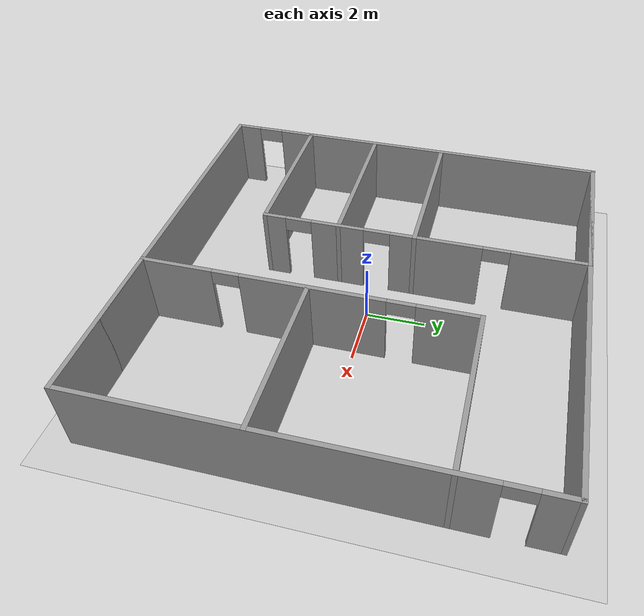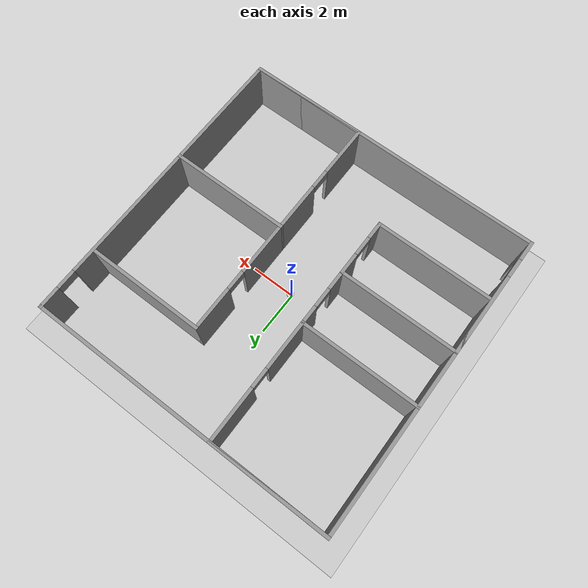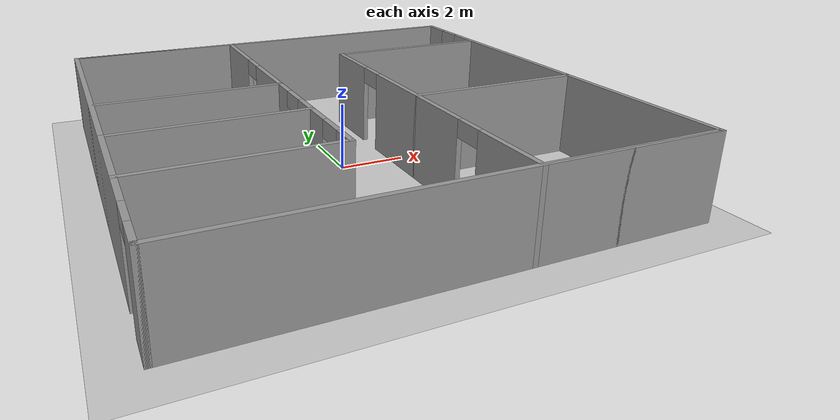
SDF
<sdf version="1.7">
 <world name="default">
  <light name="sun" type="directional">
   <pose>0 0 10 0 -0 0</pose>
   <diffuse>0.8 0.8 0.8 1</diffuse>
   <specular>0.2 0.2 0.2 1</specular>
   <attenuation>
    <range>1000</range>
    <constant>0.9</constant>
    <linear>0.01</linear>
    <quadratic>0.001</quadratic>
   </attenuation>
   <direction>-0.5 0.1 -0.9</direction>
   <spot><inner_angle>0</inner_angle><outer_angle>0</outer_angle><falloff>0</falloff></spot>
  </light>
  <model name="ground_plane">
   <static>1</static>
   <link name="link">
    <collision name="collision">
     <geometry><plane><normal>0 0 1</normal><size>100 100</size></plane></geometry>
     <surface><friction><ode><mu>100</mu><mu2>50</mu2></ode></friction></surface>
    </collision>
    <visual name="visual">
     <cast_shadows>0</cast_shadows>
     <geometry><plane><normal>0 0 1</normal><size>100 100</size></plane></geometry>
     <material>
      <script><uri>file://media/materials/scripts/gazebo.material</uri><name>Gazebo/Grey</name></script>
     </material>
    </visual>
   </link>
  </model>
  <gravity>0 0 -9.8</gravity>
  <magnetic_field>6e-06 2.3e-05 -4.2e-05</magnetic_field>
  <atmosphere type="adiabatic"/>
  <physics type="ode">
   <max_step_size>0.001</max_step_size>
   <real_time_factor>1</real_time_factor>
   <real_time_update_rate>1000</real_time_update_rate>
  </physics>
  <scene><ambient>0.4 0.4 0.4 1</ambient><background>0.7 0.7 0.7 1</background><shadows>1</shadows></scene>
  <audio><device>default</device></audio>
  <spherical_coordinates>
   <surface_model>EARTH_WGS84</surface_model>
   <latitude_deg>0</latitude_deg>
   <longitude_deg>0</longitude_deg>
   <elevation>0</elevation>
   <heading_deg>0</heading_deg>
  </spherical_coordinates>
  <model name="agent_bot">
   <link name="base_link">
    <inertial>
     <pose>0.044286 0 0.041429 0 -0 0</pose>
     <mass>0.7</mass>
     <inertia>
      <ixx>0.00361257</ixx>
      <ixy>0</ixy>
      <ixz>0.000624286</ixz>
      <iyy>0.00488671</iyy>
      <iyz>0</iyz>
      <izz>0.00707314</izz>
     </inertia>
    </inertial>
    <collision name="base_link_fixed_joint_lump__chassis_collision">
     <pose>0.115 0 0.075 0 -0 0</pose>
     <geometry><cylinder><length>0.08</length><radius>0.15</radius></cylinder></geometry>
    </collision>
    <collision name="base_link_fixed_joint_lump__caster_wheel_collision_1">
     <pose>0.145 0 0 0 -0 0</pose>
     <geometry><sphere><radius>0.035</radius></sphere></geometry>
     <surface><friction><ode><mu>0.001</mu><mu2>0.001</mu2></ode></friction></surface>
    </collision>
    <collision name="base_link_fixed_joint_lump__laser_frame_collision_2">
     <pose>0 0 0.09 0 -0 0</pose>
     <geometry><cylinder><length>0.04</length><radius>0.05</radius></cylinder></geometry>
    </collision>
    <visual name="base_link_fixed_joint_lump__chassis_visual">
     <pose>0.0725 0 0.04 0 -0 0</pose>
     <geometry><cylinder><length>0.08</length><radius>0.15</radius></cylinder></geometry>
     <material>
      <script><name>Gazebo/White</name><uri>file://media/materials/scripts/gazebo.material</uri></script>
     </material>
    </visual>
    <visual name="base_link_fixed_joint_lump__caster_wheel_visual_1">
     <pose>0.145 0 0 0 -0 0</pose>
     <geometry><sphere><radius>0.035</radius></sphere></geometry>
     <material>
      <script><name>Gazebo/Yellow</name><uri>file://media/materials/scripts/gazebo.material</uri></script>
     </material>
    </visual>
    <visual name="base_link_fixed_joint_lump__laser_frame_visual_2">
     <pose>0 0 0.09 0 -0 0</pose>
     <geometry><cylinder><length>0.02</length><radius>0.04</radius></cylinder></geometry>
     <material>
      <script><name>Gazebo/Red</name><uri>file://media/materials/scripts/gazebo.material</uri></script>
     </material>
    </visual>
    <sensor name="laser" type="ray">
     <visualize>1</visualize>
     <update_rate>10</update_rate>
     <ray>
      <scan>
       <horizontal>
        <samples>360</samples>
        <min_angle>-3.14</min_angle>
        <max_angle>3.14</max_angle>
        <resolution>1</resolution>
       </horizontal>
       <vertical><samples>1</samples><min_angle>0</min_angle><max_angle>0</max_angle></vertical>
      </scan>
      <range><min>0.3</min><max>50</max></range>
     </ray>
     <plugin name="laser_controller" filename="libgazebo_ros_ray_sensor.so">
      <ros><argument>~/out:=scan</argument></ros>
      <output_type>sensor_msgs/LaserScan</output_type>
      <frame_name>laser_frame</frame_name>
     </plugin>
     <pose>0 0 0.09 0 -0 0</pose>
    </sensor>
   </link>
   <joint name="left_wheel_joint" type="revolute">
    <pose relative_to="base_link">0 0.09 0 -1.57075 0 0</pose>
    <parent>base_link</parent>
    <child>left_wheel</child>
    <axis>
     <xyz>0 0 1</xyz>
     <limit><lower>-1e+16</lower><upper>1e+16</upper></limit>
     <dynamics><spring_reference>0</spring_reference><spring_stiffness>0</spring_stiffness></dynamics>
    </axis>
   </joint>
   <link name="left_wheel">
    <pose relative_to="left_wheel_joint">0 0 0 0 -0 0</pose>
    <inertial>
     <mass>0.1</mass>
     <inertia>
      <ixx>3.58333e-05</ixx>
      <ixy>0</ixy>
      <ixz>0</ixz>
      <iyy>3.58333e-05</iyy>
      <iyz>0</iyz>
      <izz>6.125e-05</izz>
     </inertia>
    </inertial>
    <collision name="left_wheel_collision">
     <geometry><sphere><radius>0.035</radius></sphere></geometry>
    </collision>
    <visual name="left_wheel_visual">
     <geometry><cylinder><length>0.025</length><radius>0.035</radius></cylinder></geometry>
     <material>
      <script><name>Gazebo/Yellow</name><uri>file://media/materials/scripts/gazebo.material</uri></script>
     </material>
    </visual>
   </link>
   <joint name="right_wheel_joint" type="revolute">
    <pose relative_to="base_link">0 -0.09 0 1.57075 -0 0</pose>
    <parent>base_link</parent>
    <child>right_wheel</child>
    <axis>
     <xyz>0 0 -1</xyz>
     <limit><lower>-1e+16</lower><upper>1e+16</upper></limit>
     <dynamics><spring_reference>0</spring_reference><spring_stiffness>0</spring_stiffness></dynamics>
    </axis>
   </joint>
   <link name="right_wheel">
    <pose relative_to="right_wheel_joint">0 0 0 0 -0 0</pose>
    <inertial>
     <mass>0.1</mass>
     <inertia>
      <ixx>3.58333e-05</ixx>
      <ixy>0</ixy>
      <ixz>0</ixz>
      <iyy>3.58333e-05</iyy>
      <iyz>0</iyz>
      <izz>6.125e-05</izz>
     </inertia>
    </inertial>
    <collision name="right_wheel_collision">
     <geometry><sphere><radius>0.035</radius></sphere></geometry>
    </collision>
    <visual name="right_wheel_visual">
     <geometry><cylinder><length>0.025</length><radius>0.035</radius></cylinder></geometry>
     <material>
      <script><name>Gazebo/Yellow</name><uri>file://media/materials/scripts/gazebo.material</uri></script>
     </material>
    </visual>
   </link>
   <static>0</static>
   <plugin name="gazebo_ros2_control" filename="libgazebo_ros2_control.so">
    <parameters>/home/ubuntu-ros/ros_ws/install/agent_bot/share/agent_bot/config/my_controllers.yaml</parameters>
    <parameters>/home/ubuntu-ros/ros_ws/install/agent_bot/share/agent_bot/config/gaz_ros2_ctl_sim.yaml</parameters>
   </plugin>
   <pose>0.003769 0.000155 0.034998 -2.2e-05 -1.5e-05 -0.001205</pose>
  </model>
  <model name="mapD">
   <pose>0.094946 -0.022371 0 0 -0 0</pose>
   <link name="Wall_0">
    <collision name="Wall_0_Collision">
     <geometry><box><size>14 0.15 2.5</size></box></geometry>
     <pose>0 0 1.25 0 -0 0</pose>
    </collision>
    <visual name="Wall_0_Visual">
     <pose>0 0 1.25 0 -0 0</pose>
     <geometry><box><size>14 0.15 2.5</size></box></geometry>
     <material>
      <script><uri>file://media/materials/scripts/gazebo.material</uri><name>Gazebo/Grey</name></script>
      <ambient>1 1 1 1</ambient>
     </material>
     <meta><layer>0</layer></meta>
    </visual>
    <pose>0 -6.925 0 0 -0 0</pose>
   </link>
   <link name="Wall_1">
    <pose>6.925 0 0 0 -0 1.5708</pose>
    <visual name="Wall_1_Visual_0">
     <pose>-0.972453 0 1.25 0 -0 0</pose>
     <geometry><box><size>12.0551 0.15 2.5</size></box></geometry>
     <material>
      <script><uri>file://media/materials/scripts/gazebo.material</uri><name>Gazebo/Grey</name></script>
      <ambient>1 1 1 1</ambient>
     </material>
     <meta><layer>0</layer></meta>
    </visual>
    <collision name="Wall_1_Collision_0">
     <geometry><box><size>12.0551 0.15 2.5</size></box></geometry>
     <pose>-0.972453 0 1.25 0 -0 0</pose>
    </collision>
    <visual name="Wall_1_Visual_1">
     <pose>6.47755 0 1.25 0 -0 0</pose>
     <geometry><box><size>1.04491 0.15 2.5</size></box></geometry>
     <material>
      <script><uri>file://media/materials/scripts/gazebo.material</uri><name>Gazebo/Grey</name></script>
      <ambient>1 1 1 1</ambient>
     </material>
     <meta><layer>0</layer></meta>
    </visual>
    <collision name="Wall_1_Collision_1">
     <geometry><box><size>1.04491 0.15 2.5</size></box></geometry>
     <pose>6.47755 0 1.25 0 -0 0</pose>
    </collision>
    <visual name="Wall_1_Visual_2">
     <pose>5.50509 0 2.25 0 -0 0</pose>
     <geometry><box><size>0.9 0.15 0.5</size></box></geometry>
     <material>
      <script><uri>file://media/materials/scripts/gazebo.material</uri><name>Gazebo/Grey</name></script>
      <ambient>1 1 1 1</ambient>
     </material>
     <meta><layer>0</layer></meta>
    </visual>
    <collision name="Wall_1_Collision_2">
     <geometry><box><size>0.9 0.15 0.5</size></box></geometry>
     <pose>5.50509 0 2.25 0 -0 0</pose>
    </collision>
   </link>
   <link name="Wall_10">
    <collision name="Wall_10_Collision">
     <geometry><box><size>5.5 0.15 2.5</size></box></geometry>
     <pose>0 0 1.25 0 -0 0</pose>
    </collision>
    <visual name="Wall_10_Visual">
     <pose>0 0 1.25 0 -0 0</pose>
     <geometry><box><size>5.5 0.15 2.5</size></box></geometry>
     <material>
      <script><uri>file://media/materials/scripts/gazebo.material</uri><name>Gazebo/Grey</name></script>
      <ambient>1 1 1 1</ambient>
     </material>
     <meta><layer>0</layer></meta>
    </visual>
    <pose>4.25 -1.425 0 0 -0 3.14159</pose>
   </link>
   <link name="Wall_12">
    <collision name="Wall_12_Collision">
     <geometry><box><size>5.5 0.15 2.5</size></box></geometry>
     <pose>0 0 1.25 0 -0 0</pose>
    </collision>
    <visual name="Wall_12_Visual">
     <pose>0 0 1.25 0 -0 0</pose>
     <geometry><box><size>5.5 0.15 2.5</size></box></geometry>
     <material>
      <script><uri>file://media/materials/scripts/gazebo.material</uri><name>Gazebo/Grey</name></script>
      <ambient>1 1 1 1</ambient>
     </material>
     <meta><layer>0</layer></meta>
    </visual>
    <pose>-4.25 6.925 0 0 -0 0</pose>
   </link>
   <link name="Wall_13">
    <pose>-1.575 1.5 0 0 -0 -1.5708</pose>
    <visual name="Wall_13_Visual_0">
     <pose>-4.21432 0 1.25 0 -0 0</pose>
     <geometry><box><size>2.57137 0.15 2.5</size></box></geometry>
     <material>
      <script><uri>file://media/materials/scripts/gazebo.material</uri><name>Gazebo/Grey</name></script>
      <ambient>1 1 1 1</ambient>
     </material>
     <meta><layer>0</layer></meta>
    </visual>
    <collision name="Wall_13_Collision_0">
     <geometry><box><size>2.57137 0.15 2.5</size></box></geometry>
     <pose>-4.21432 0 1.25 0 -0 0</pose>
    </collision>
    <visual name="Wall_13_Visual_1">
     <pose>-0.489399 0 1.25 0 -0 0</pose>
     <geometry><box><size>3.07847 0.15 2.5</size></box></geometry>
     <material>
      <script><uri>file://media/materials/scripts/gazebo.material</uri><name>Gazebo/Grey</name></script>
      <ambient>1 1 1 1</ambient>
     </material>
     <meta><layer>0</layer></meta>
    </visual>
    <collision name="Wall_13_Collision_1">
     <geometry><box><size>3.07847 0.15 2.5</size></box></geometry>
     <pose>-0.489399 0 1.25 0 -0 0</pose>
    </collision>
    <visual name="Wall_13_Visual_2">
     <pose>2.86454 0 1.25 0 -0 0</pose>
     <geometry><box><size>1.82941 0.15 2.5</size></box></geometry>
     <material>
      <script><uri>file://media/materials/scripts/gazebo.material</uri><name>Gazebo/Grey</name></script>
      <ambient>1 1 1 1</ambient>
     </material>
     <meta><layer>0</layer></meta>
    </visual>
    <collision name="Wall_13_Collision_2">
     <geometry><box><size>1.82941 0.15 2.5</size></box></geometry>
     <pose>2.86454 0 1.25 0 -0 0</pose>
    </collision>
    <visual name="Wall_13_Visual_3">
     <pose>5.08962 0 1.25 0 -0 0</pose>
     <geometry><box><size>0.820755 0.15 2.5</size></box></geometry>
     <material>
      <script><uri>file://media/materials/scripts/gazebo.material</uri><name>Gazebo/Grey</name></script>
      <ambient>1 1 1 1</ambient>
     </material>
     <meta><layer>0</layer></meta>
    </visual>
    <collision name="Wall_13_Collision_3">
     <geometry><box><size>0.820755 0.15 2.5</size></box></geometry>
     <pose>5.08962 0 1.25 0 -0 0</pose>
    </collision>
    <visual name="Wall_13_Visual_4">
     <pose>-2.47863 0 2.25 0 -0 0</pose>
     <geometry><box><size>0.9 0.15 0.5</size></box></geometry>
     <material>
      <script><uri>file://media/materials/scripts/gazebo.material</uri><name>Gazebo/Grey</name></script>
      <ambient>1 1 1 1</ambient>
     </material>
     <meta><layer>0</layer></meta>
    </visual>
    <collision name="Wall_13_Collision_4">
     <geometry><box><size>0.9 0.15 0.5</size></box></geometry>
     <pose>-2.47863 0 2.25 0 -0 0</pose>
    </collision>
    <visual name="Wall_13_Visual_5">
     <pose>1.49983 0 2.25 0 -0 0</pose>
     <geometry><box><size>0.9 0.15 0.5</size></box></geometry>
     <material>
      <script><uri>file://media/materials/scripts/gazebo.material</uri><name>Gazebo/Grey</name></script>
      <ambient>1 1 1 1</ambient>
     </material>
     <meta><layer>0</layer></meta>
    </visual>
    <collision name="Wall_13_Collision_5">
     <geometry><box><size>0.9 0.15 0.5</size></box></geometry>
     <pose>1.49983 0 2.25 0 -0 0</pose>
    </collision>
    <visual name="Wall_13_Visual_6">
     <pose>4.22924 0 2.25 0 -0 0</pose>
     <geometry><box><size>0.9 0.15 0.5</size></box></geometry>
     <material>
      <script><uri>file://media/materials/scripts/gazebo.material</uri><name>Gazebo/Grey</name></script>
      <ambient>1 1 1 1</ambient>
     </material>
     <meta><layer>0</layer></meta>
    </visual>
    <collision name="Wall_13_Collision_6">
     <geometry><box><size>0.9 0.15 0.5</size></box></geometry>
     <pose>4.22924 0 2.25 0 -0 0</pose>
    </collision>
   </link>
   <link name="Wall_14">
    <collision name="Wall_14_Collision">
     <geometry><box><size>5.5 0.15 2.5</size></box></geometry>
     <pose>0 0 1.25 0 -0 0</pose>
    </collision>
    <visual name="Wall_14_Visual">
     <pose>0 0 1.25 0 -0 0</pose>
     <geometry><box><size>5.5 0.15 2.5</size></box></geometry>
     <material>
      <script><uri>file://media/materials/scripts/gazebo.material</uri><name>Gazebo/Grey</name></script>
      <ambient>1 1 1 1</ambient>
     </material>
     <meta><layer>0</layer></meta>
    </visual>
    <pose>-4.25 -3.925 0 0 -0 3.14159</pose>
   </link>
   <link name="Wall_15">
    <collision name="Wall_15_Collision">
     <geometry><box><size>2.75 0.15 2.5</size></box></geometry>
     <pose>0 0 1.25 0 -0 0</pose>
    </collision>
    <visual name="Wall_15_Visual">
     <pose>0 0 1.25 0 -0 0</pose>
     <geometry><box><size>2.75 0.15 2.5</size></box></geometry>
     <material>
      <script><uri>file://media/materials/scripts/gazebo.material</uri><name>Gazebo/Grey</name></script>
      <ambient>1 1 1 1</ambient>
     </material>
     <meta><layer>0</layer></meta>
    </visual>
    <pose>-6.925 -2.625 0 0 -0 1.5708</pose>
   </link>
   <link name="Wall_16">
    <collision name="Wall_16_Collision">
     <geometry><box><size>5.5 0.15 2.5</size></box></geometry>
     <pose>0 0 1.25 0 -0 0</pose>
    </collision>
    <visual name="Wall_16_Visual">
     <pose>0 0 1.25 0 -0 0</pose>
     <geometry><box><size>5.5 0.15 2.5</size></box></geometry>
     <material>
      <script><uri>file://media/materials/scripts/gazebo.material</uri><name>Gazebo/Grey</name></script>
      <ambient>1 1 1 1</ambient>
     </material>
     <meta><layer>0</layer></meta>
    </visual>
    <pose>-4.25 -1.325 0 0 -0 0</pose>
   </link>
   <link name="Wall_18">
    <collision name="Wall_18_Collision">
     <geometry><box><size>5.5 0.15 2.5</size></box></geometry>
     <pose>0 0 1.25 0 -0 0</pose>
    </collision>
    <visual name="Wall_18_Visual">
     <pose>0 0 1.25 0 -0 0</pose>
     <geometry><box><size>5.5 0.15 2.5</size></box></geometry>
     <material>
      <script><uri>file://media/materials/scripts/gazebo.material</uri><name>Gazebo/Grey</name></script>
      <ambient>1 1 1 1</ambient>
     </material>
     <meta><layer>0</layer></meta>
    </visual>
    <pose>-4.25 1.275 0 0 -0 3.14159</pose>
   </link>
   <link name="Wall_2">
    <collision name="Wall_2_Collision">
     <geometry><box><size>14 0.15 2.5</size></box></geometry>
     <pose>0 0 1.25 0 -0 0</pose>
    </collision>
    <visual name="Wall_2_Visual">
     <pose>0 0 1.25 0 -0 0</pose>
     <geometry><box><size>14 0.15 2.5</size></box></geometry>
     <material>
      <script><uri>file://media/materials/scripts/gazebo.material</uri><name>Gazebo/Grey</name></script>
      <ambient>1 1 1 1</ambient>
     </material>
     <meta><layer>0</layer></meta>
    </visual>
    <pose>0 6.925 0 0 -0 3.14159</pose>
   </link>
   <link name="Wall_3">
    <pose>-6.925 0 0 0 -0 -1.5708</pose>
    <visual name="Wall_3_Visual_0">
     <pose>-0.92542 0 1.25 0 -0 0</pose>
     <geometry><box><size>12.1492 0.15 2.5</size></box></geometry>
     <material>
      <script><uri>file://media/materials/scripts/gazebo.material</uri><name>Gazebo/Grey</name></script>
      <ambient>1 1 1 1</ambient>
     </material>
     <meta><layer>0</layer></meta>
    </visual>
    <collision name="Wall_3_Collision_0">
     <geometry><box><size>12.1492 0.15 2.5</size></box></geometry>
     <pose>-0.92542 0 1.25 0 -0 0</pose>
    </collision>
    <visual name="Wall_3_Visual_1">
     <pose>6.52458 0 1.25 0 -0 0</pose>
     <geometry><box><size>0.95084 0.15 2.5</size></box></geometry>
     <material>
      <script><uri>file://media/materials/scripts/gazebo.material</uri><name>Gazebo/Grey</name></script>
      <ambient>1 1 1 1</ambient>
     </material>
     <meta><layer>0</layer></meta>
    </visual>
    <collision name="Wall_3_Collision_1">
     <geometry><box><size>0.95084 0.15 2.5</size></box></geometry>
     <pose>6.52458 0 1.25 0 -0 0</pose>
    </collision>
    <visual name="Wall_3_Visual_2">
     <pose>5.59916 0 2.25 0 -0 0</pose>
     <geometry><box><size>0.9 0.15 0.5</size></box></geometry>
     <material>
      <script><uri>file://media/materials/scripts/gazebo.material</uri><name>Gazebo/Grey</name></script>
      <ambient>1 1 1 1</ambient>
     </material>
     <meta><layer>0</layer></meta>
    </visual>
    <collision name="Wall_3_Collision_2">
     <geometry><box><size>0.9 0.15 0.5</size></box></geometry>
     <pose>5.59916 0 2.25 0 -0 0</pose>
    </collision>
   </link>
   <link name="Wall_5">
    <collision name="Wall_5_Collision">
     <geometry><box><size>5.5 0.15 2.5</size></box></geometry>
     <pose>0 0 1.25 0 -0 0</pose>
    </collision>
    <visual name="Wall_5_Visual">
     <pose>0 0 1.25 0 -0 0</pose>
     <geometry><box><size>5.5 0.15 2.5</size></box></geometry>
     <material>
      <script><uri>file://media/materials/scripts/gazebo.material</uri><name>Gazebo/Grey</name></script>
      <ambient>1 1 1 1</ambient>
     </material>
     <meta><layer>0</layer></meta>
    </visual>
    <pose>4.25 -6.925 0 0 -0 3.14159</pose>
   </link>
   <link name="Wall_6">
    <pose>1.575 -1.5 0 0 -0 1.5708</pose>
    <visual name="Wall_6_Visual_0">
     <pose>-4.27944 0 1.25 0 -0 0</pose>
     <geometry><box><size>2.44113 0.15 2.5</size></box></geometry>
     <material>
      <script><uri>file://media/materials/scripts/gazebo.material</uri><name>Gazebo/Grey</name></script>
      <ambient>1 1 1 1</ambient>
     </material>
     <meta><layer>0</layer></meta>
    </visual>
    <collision name="Wall_6_Collision_0">
     <geometry><box><size>2.44113 0.15 2.5</size></box></geometry>
     <pose>-4.27944 0 1.25 0 -0 0</pose>
    </collision>
    <visual name="Wall_6_Visual_1">
     <pose>0.190135 0 1.25 0 -0 0</pose>
     <geometry><box><size>4.69801 0.15 2.5</size></box></geometry>
     <material>
      <script><uri>file://media/materials/scripts/gazebo.material</uri><name>Gazebo/Grey</name></script>
      <ambient>1 1 1 1</ambient>
     </material>
     <meta><layer>0</layer></meta>
    </visual>
    <collision name="Wall_6_Collision_1">
     <geometry><box><size>4.69801 0.15 2.5</size></box></geometry>
     <pose>0.190135 0 1.25 0 -0 0</pose>
    </collision>
    <visual name="Wall_6_Visual_2">
     <pose>4.46957 0 1.25 0 -0 0</pose>
     <geometry><box><size>2.06086 0.15 2.5</size></box></geometry>
     <material>
      <script><uri>file://media/materials/scripts/gazebo.material</uri><name>Gazebo/Grey</name></script>
      <ambient>1 1 1 1</ambient>
     </material>
     <meta><layer>0</layer></meta>
    </visual>
    <collision name="Wall_6_Collision_2">
     <geometry><box><size>2.06086 0.15 2.5</size></box></geometry>
     <pose>4.46957 0 1.25 0 -0 0</pose>
    </collision>
    <visual name="Wall_6_Visual_3">
     <pose>-2.60887 0 2.25 0 -0 0</pose>
     <geometry><box><size>0.9 0.15 0.5</size></box></geometry>
     <material>
      <script><uri>file://media/materials/scripts/gazebo.material</uri><name>Gazebo/Grey</name></script>
      <ambient>1 1 1 1</ambient>
     </material>
     <meta><layer>0</layer></meta>
    </visual>
    <collision name="Wall_6_Collision_3">
     <geometry><box><size>0.9 0.15 0.5</size></box></geometry>
     <pose>-2.60887 0 2.25 0 -0 0</pose>
    </collision>
    <visual name="Wall_6_Visual_4">
     <pose>2.98914 0 2.25 0 -0 0</pose>
     <geometry><box><size>0.9 0.15 0.5</size></box></geometry>
     <material>
      <script><uri>file://media/materials/scripts/gazebo.material</uri><name>Gazebo/Grey</name></script>
      <ambient>1 1 1 1</ambient>
     </material>
     <meta><layer>0</layer></meta>
    </visual>
    <collision name="Wall_6_Collision_4">
     <geometry><box><size>0.9 0.15 0.5</size></box></geometry>
     <pose>2.98914 0 2.25 0 -0 0</pose>
    </collision>
   </link>
   <link name="Wall_7">
    <collision name="Wall_7_Collision">
     <geometry><box><size>5.5 0.15 2.5</size></box></geometry>
     <pose>0 0 1.25 0 -0 0</pose>
    </collision>
    <visual name="Wall_7_Visual">
     <pose>0 0 1.25 0 -0 0</pose>
     <geometry><box><size>5.5 0.15 2.5</size></box></geometry>
     <material>
      <script><uri>file://media/materials/scripts/gazebo.material</uri><name>Gazebo/Grey</name></script>
      <ambient>1 1 1 1</ambient>
     </material>
     <meta><layer>0</layer></meta>
    </visual>
    <pose>4.25 3.925 0 0 -0 0</pose>
   </link>
   <static>1</static>
  </model>
 </world>
</sdf>
